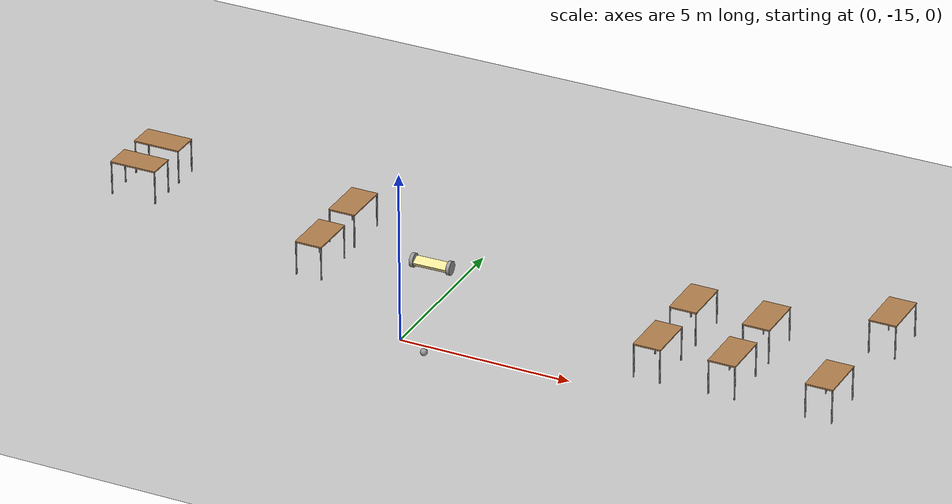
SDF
<sdf version="1.6">
 <world name="default">
  <model name="ground_plane">
   <static>1</static>
   <link name="link">
    <collision name="collision">
     <geometry><plane><normal>0 0 1</normal><size>100 100</size></plane></geometry>
     <surface><friction><ode><mu>100</mu><mu2>50</mu2></ode></friction></surface>
    </collision>
    <visual name="visual">
     <cast_shadows>0</cast_shadows>
     <geometry><plane><normal>0 0 1</normal><size>100 100</size></plane></geometry>
     <material>
      <script><uri>file://media/materials/scripts/gazebo.material</uri><name>Gazebo/Grey</name></script>
     </material>
    </visual>
   </link>
  </model>
  <model name="table_0">
   <static>0</static>
   <link name="link">
    <collision name="surface">
     <pose>0 0 1 0 -0 0</pose>
     <geometry><box><size>1.5 0.8 0.03</size></box></geometry>
     <surface><friction><ode><mu>0.6</mu><mu2>0.6</mu2></ode></friction></surface>
    </collision>
    <visual name="visual1">
     <pose>0 0 1 0 -0 0</pose>
     <geometry><box><size>1.4 0.8 0.04</size></box></geometry>
     <material>
      <script><uri>file://media/materials/scripts/gazebo.material</uri><name>Gazebo/Wood</name></script>
     </material>
    </visual>
    <collision name="front_left_leg">
     <pose>0.68 0.38 0.5 0 -0 0</pose>
     <geometry><cylinder><radius>0.02</radius><length>1</length></cylinder></geometry>
    </collision>
    <visual name="front_left_leg">
     <pose>0.68 0.38 0.5 0 -0 0</pose>
     <geometry><cylinder><radius>0.02</radius><length>1</length></cylinder></geometry>
     <material>
      <script><uri>file://media/materials/scripts/gazebo.material</uri><name>Gazebo/Grey</name></script>
     </material>
    </visual>
    <collision name="front_right_leg">
     <pose>0.68 -0.38 0.5 0 -0 0</pose>
     <geometry><cylinder><radius>0.02</radius><length>1</length></cylinder></geometry>
    </collision>
    <visual name="front_right_leg">
     <pose>0.68 -0.38 0.5 0 -0 0</pose>
     <geometry><cylinder><radius>0.02</radius><length>1</length></cylinder></geometry>
     <material>
      <script><uri>file://media/materials/scripts/gazebo.material</uri><name>Gazebo/Grey</name></script>
     </material>
    </visual>
    <collision name="back_right_leg">
     <pose>-0.68 -0.38 0.5 0 -0 0</pose>
     <geometry><cylinder><radius>0.02</radius><length>1</length></cylinder></geometry>
    </collision>
    <visual name="back_right_leg">
     <pose>-0.68 -0.38 0.5 0 -0 0</pose>
     <geometry><cylinder><radius>0.02</radius><length>1</length></cylinder></geometry>
     <material>
      <script><uri>file://media/materials/scripts/gazebo.material</uri><name>Gazebo/Grey</name></script>
     </material>
    </visual>
    <collision name="back_left_leg">
     <pose>-0.68 0.38 0.5 0 -0 0</pose>
     <geometry><cylinder><radius>0.02</radius><length>1</length></cylinder></geometry>
    </collision>
    <visual name="back_left_leg">
     <pose>-0.68 0.38 0.5 0 -0 0</pose>
     <geometry><cylinder><radius>0.02</radius><length>1</length></cylinder></geometry>
     <material>
      <script><uri>file://media/materials/scripts/gazebo.material</uri><name>Gazebo/Grey</name></script>
     </material>
    </visual>
    <inertial>
     <inertia><ixx>1</ixx><ixy>0</ixy><ixz>0</ixz><iyy>1</iyy><iyz>0</iyz><izz>1</izz></inertia>
     <mass>1</mass>
    </inertial>
   </link>
   <pose>6.803 -13.3459 -7e-06 2e-06 2e-06 1.57</pose>
  </model>
  <model name="table_0_clone">
   <static>0</static>
   <link name="link">
    <collision name="surface">
     <pose>0 0 1 0 -0 0</pose>
     <geometry><box><size>1.5 0.8 0.03</size></box></geometry>
     <surface><friction><ode><mu>0.6</mu><mu2>0.6</mu2></ode></friction></surface>
    </collision>
    <visual name="visual1">
     <pose>0 0 1 0 -0 0</pose>
     <geometry><box><size>1.4 0.8 0.04</size></box></geometry>
     <material>
      <script><uri>file://media/materials/scripts/gazebo.material</uri><name>Gazebo/Wood</name></script>
     </material>
    </visual>
    <collision name="front_left_leg">
     <pose>0.68 0.38 0.5 0 -0 0</pose>
     <geometry><cylinder><radius>0.02</radius><length>1</length></cylinder></geometry>
    </collision>
    <visual name="front_left_leg">
     <pose>0.68 0.38 0.5 0 -0 0</pose>
     <geometry><cylinder><radius>0.02</radius><length>1</length></cylinder></geometry>
     <material>
      <script><uri>file://media/materials/scripts/gazebo.material</uri><name>Gazebo/Grey</name></script>
     </material>
    </visual>
    <collision name="front_right_leg">
     <pose>0.68 -0.38 0.5 0 -0 0</pose>
     <geometry><cylinder><radius>0.02</radius><length>1</length></cylinder></geometry>
    </collision>
    <visual name="front_right_leg">
     <pose>0.68 -0.38 0.5 0 -0 0</pose>
     <geometry><cylinder><radius>0.02</radius><length>1</length></cylinder></geometry>
     <material>
      <script><uri>file://media/materials/scripts/gazebo.material</uri><name>Gazebo/Grey</name></script>
     </material>
    </visual>
    <collision name="back_right_leg">
     <pose>-0.68 -0.38 0.5 0 -0 0</pose>
     <geometry><cylinder><radius>0.02</radius><length>1</length></cylinder></geometry>
    </collision>
    <visual name="back_right_leg">
     <pose>-0.68 -0.38 0.5 0 -0 0</pose>
     <geometry><cylinder><radius>0.02</radius><length>1</length></cylinder></geometry>
     <material>
      <script><uri>file://media/materials/scripts/gazebo.material</uri><name>Gazebo/Grey</name></script>
     </material>
    </visual>
    <collision name="back_left_leg">
     <pose>-0.68 0.38 0.5 0 -0 0</pose>
     <geometry><cylinder><radius>0.02</radius><length>1</length></cylinder></geometry>
    </collision>
    <visual name="back_left_leg">
     <pose>-0.68 0.38 0.5 0 -0 0</pose>
     <geometry><cylinder><radius>0.02</radius><length>1</length></cylinder></geometry>
     <material>
      <script><uri>file://media/materials/scripts/gazebo.material</uri><name>Gazebo/Grey</name></script>
     </material>
    </visual>
    <inertial>
     <inertia><ixx>1</ixx><ixy>0</ixy><ixz>0</ixz><iyy>1</iyy><iyz>0</iyz><izz>1</izz></inertia>
     <mass>1</mass>
    </inertial>
   </link>
   <pose>8.92902 -13.2599 -7e-06 3e-06 2e-06 1.57</pose>
  </model>
  <model name="table_0_clone_0">
   <static>0</static>
   <link name="link">
    <collision name="surface">
     <pose>0 0 1 0 -0 0</pose>
     <geometry><box><size>1.5 0.8 0.03</size></box></geometry>
     <surface><friction><ode><mu>0.6</mu><mu2>0.6</mu2></ode></friction></surface>
    </collision>
    <visual name="visual1">
     <pose>0 0 1 0 -0 0</pose>
     <geometry><box><size>1.4 0.8 0.04</size></box></geometry>
     <material>
      <script><uri>file://media/materials/scripts/gazebo.material</uri><name>Gazebo/Wood</name></script>
     </material>
    </visual>
    <collision name="front_left_leg">
     <pose>0.68 0.38 0.5 0 -0 0</pose>
     <geometry><cylinder><radius>0.02</radius><length>1</length></cylinder></geometry>
    </collision>
    <visual name="front_left_leg">
     <pose>0.68 0.38 0.5 0 -0 0</pose>
     <geometry><cylinder><radius>0.02</radius><length>1</length></cylinder></geometry>
     <material>
      <script><uri>file://media/materials/scripts/gazebo.material</uri><name>Gazebo/Grey</name></script>
     </material>
    </visual>
    <collision name="front_right_leg">
     <pose>0.68 -0.38 0.5 0 -0 0</pose>
     <geometry><cylinder><radius>0.02</radius><length>1</length></cylinder></geometry>
    </collision>
    <visual name="front_right_leg">
     <pose>0.68 -0.38 0.5 0 -0 0</pose>
     <geometry><cylinder><radius>0.02</radius><length>1</length></cylinder></geometry>
     <material>
      <script><uri>file://media/materials/scripts/gazebo.material</uri><name>Gazebo/Grey</name></script>
     </material>
    </visual>
    <collision name="back_right_leg">
     <pose>-0.68 -0.38 0.5 0 -0 0</pose>
     <geometry><cylinder><radius>0.02</radius><length>1</length></cylinder></geometry>
    </collision>
    <visual name="back_right_leg">
     <pose>-0.68 -0.38 0.5 0 -0 0</pose>
     <geometry><cylinder><radius>0.02</radius><length>1</length></cylinder></geometry>
     <material>
      <script><uri>file://media/materials/scripts/gazebo.material</uri><name>Gazebo/Grey</name></script>
     </material>
    </visual>
    <collision name="back_left_leg">
     <pose>-0.68 0.38 0.5 0 -0 0</pose>
     <geometry><cylinder><radius>0.02</radius><length>1</length></cylinder></geometry>
    </collision>
    <visual name="back_left_leg">
     <pose>-0.68 0.38 0.5 0 -0 0</pose>
     <geometry><cylinder><radius>0.02</radius><length>1</length></cylinder></geometry>
     <material>
      <script><uri>file://media/materials/scripts/gazebo.material</uri><name>Gazebo/Grey</name></script>
     </material>
    </visual>
    <inertial>
     <inertia><ixx>1</ixx><ixy>0</ixy><ixz>0</ixz><iyy>1</iyy><iyz>0</iyz><izz>1</izz></inertia>
     <mass>1</mass>
    </inertial>
   </link>
   <pose>11.713 -13.2581 -7e-06 2e-06 2e-06 1.57</pose>
  </model>
  <model name="table_0_clone_0_clone">
   <static>0</static>
   <link name="link">
    <collision name="surface">
     <pose>0 0 1 0 -0 0</pose>
     <geometry><box><size>1.5 0.8 0.03</size></box></geometry>
     <surface><friction><ode><mu>0.6</mu><mu2>0.6</mu2></ode></friction></surface>
    </collision>
    <visual name="visual1">
     <pose>0 0 1 0 -0 0</pose>
     <geometry><box><size>1.4 0.8 0.04</size></box></geometry>
     <material>
      <script><uri>file://media/materials/scripts/gazebo.material</uri><name>Gazebo/Wood</name></script>
     </material>
    </visual>
    <collision name="front_left_leg">
     <pose>0.68 0.38 0.5 0 -0 0</pose>
     <geometry><cylinder><radius>0.02</radius><length>1</length></cylinder></geometry>
    </collision>
    <visual name="front_left_leg">
     <pose>0.68 0.38 0.5 0 -0 0</pose>
     <geometry><cylinder><radius>0.02</radius><length>1</length></cylinder></geometry>
     <material>
      <script><uri>file://media/materials/scripts/gazebo.material</uri><name>Gazebo/Grey</name></script>
     </material>
    </visual>
    <collision name="front_right_leg">
     <pose>0.68 -0.38 0.5 0 -0 0</pose>
     <geometry><cylinder><radius>0.02</radius><length>1</length></cylinder></geometry>
    </collision>
    <visual name="front_right_leg">
     <pose>0.68 -0.38 0.5 0 -0 0</pose>
     <geometry><cylinder><radius>0.02</radius><length>1</length></cylinder></geometry>
     <material>
      <script><uri>file://media/materials/scripts/gazebo.material</uri><name>Gazebo/Grey</name></script>
     </material>
    </visual>
    <collision name="back_right_leg">
     <pose>-0.68 -0.38 0.5 0 -0 0</pose>
     <geometry><cylinder><radius>0.02</radius><length>1</length></cylinder></geometry>
    </collision>
    <visual name="back_right_leg">
     <pose>-0.68 -0.38 0.5 0 -0 0</pose>
     <geometry><cylinder><radius>0.02</radius><length>1</length></cylinder></geometry>
     <material>
      <script><uri>file://media/materials/scripts/gazebo.material</uri><name>Gazebo/Grey</name></script>
     </material>
    </visual>
    <collision name="back_left_leg">
     <pose>-0.68 0.38 0.5 0 -0 0</pose>
     <geometry><cylinder><radius>0.02</radius><length>1</length></cylinder></geometry>
    </collision>
    <visual name="back_left_leg">
     <pose>-0.68 0.38 0.5 0 -0 0</pose>
     <geometry><cylinder><radius>0.02</radius><length>1</length></cylinder></geometry>
     <material>
      <script><uri>file://media/materials/scripts/gazebo.material</uri><name>Gazebo/Grey</name></script>
     </material>
    </visual>
    <inertial>
     <inertia><ixx>1</ixx><ixy>0</ixy><ixz>0</ixz><iyy>1</iyy><iyz>0</iyz><izz>1</izz></inertia>
     <mass>1</mass>
    </inertial>
   </link>
   <pose>11.8787 -9.43946 -1e-06 0 -1e-06 1.57164</pose>
  </model>
  <model name="table_0_clone_0_clone_0">
   <static>0</static>
   <link name="link">
    <collision name="surface">
     <pose>0 0 1 0 -0 0</pose>
     <geometry><box><size>1.5 0.8 0.03</size></box></geometry>
     <surface><friction><ode><mu>0.6</mu><mu2>0.6</mu2></ode></friction></surface>
    </collision>
    <visual name="visual1">
     <pose>0 0 1 0 -0 0</pose>
     <geometry><box><size>1.4 0.8 0.04</size></box></geometry>
     <material>
      <script><uri>file://media/materials/scripts/gazebo.material</uri><name>Gazebo/Wood</name></script>
     </material>
    </visual>
    <collision name="front_left_leg">
     <pose>0.68 0.38 0.5 0 -0 0</pose>
     <geometry><cylinder><radius>0.02</radius><length>1</length></cylinder></geometry>
    </collision>
    <visual name="front_left_leg">
     <pose>0.68 0.38 0.5 0 -0 0</pose>
     <geometry><cylinder><radius>0.02</radius><length>1</length></cylinder></geometry>
     <material>
      <script><uri>file://media/materials/scripts/gazebo.material</uri><name>Gazebo/Grey</name></script>
     </material>
    </visual>
    <collision name="front_right_leg">
     <pose>0.68 -0.38 0.5 0 -0 0</pose>
     <geometry><cylinder><radius>0.02</radius><length>1</length></cylinder></geometry>
    </collision>
    <visual name="front_right_leg">
     <pose>0.68 -0.38 0.5 0 -0 0</pose>
     <geometry><cylinder><radius>0.02</radius><length>1</length></cylinder></geometry>
     <material>
      <script><uri>file://media/materials/scripts/gazebo.material</uri><name>Gazebo/Grey</name></script>
     </material>
    </visual>
    <collision name="back_right_leg">
     <pose>-0.68 -0.38 0.5 0 -0 0</pose>
     <geometry><cylinder><radius>0.02</radius><length>1</length></cylinder></geometry>
    </collision>
    <visual name="back_right_leg">
     <pose>-0.68 -0.38 0.5 0 -0 0</pose>
     <geometry><cylinder><radius>0.02</radius><length>1</length></cylinder></geometry>
     <material>
      <script><uri>file://media/materials/scripts/gazebo.material</uri><name>Gazebo/Grey</name></script>
     </material>
    </visual>
    <collision name="back_left_leg">
     <pose>-0.68 0.38 0.5 0 -0 0</pose>
     <geometry><cylinder><radius>0.02</radius><length>1</length></cylinder></geometry>
    </collision>
    <visual name="back_left_leg">
     <pose>-0.68 0.38 0.5 0 -0 0</pose>
     <geometry><cylinder><radius>0.02</radius><length>1</length></cylinder></geometry>
     <material>
      <script><uri>file://media/materials/scripts/gazebo.material</uri><name>Gazebo/Grey</name></script>
     </material>
    </visual>
    <inertial>
     <inertia><ixx>1</ixx><ixy>0</ixy><ixz>0</ixz><iyy>1</iyy><iyz>0</iyz><izz>1</izz></inertia>
     <mass>1</mass>
    </inertial>
   </link>
   <pose>8.95502 -11.1223 -7e-06 3e-06 2e-06 1.57</pose>
  </model>
  <model name="table_0_clone_0_clone_0_clone">
   <static>0</static>
   <link name="link">
    <collision name="surface">
     <pose>0 0 1 0 -0 0</pose>
     <geometry><box><size>1.5 0.8 0.03</size></box></geometry>
     <surface><friction><ode><mu>0.6</mu><mu2>0.6</mu2></ode></friction></surface>
    </collision>
    <visual name="visual1">
     <pose>0 0 1 0 -0 0</pose>
     <geometry><box><size>1.4 0.8 0.04</size></box></geometry>
     <material>
      <script><uri>file://media/materials/scripts/gazebo.material</uri><name>Gazebo/Wood</name></script>
     </material>
    </visual>
    <collision name="front_left_leg">
     <pose>0.68 0.38 0.5 0 -0 0</pose>
     <geometry><cylinder><radius>0.02</radius><length>1</length></cylinder></geometry>
    </collision>
    <visual name="front_left_leg">
     <pose>0.68 0.38 0.5 0 -0 0</pose>
     <geometry><cylinder><radius>0.02</radius><length>1</length></cylinder></geometry>
     <material>
      <script><uri>file://media/materials/scripts/gazebo.material</uri><name>Gazebo/Grey</name></script>
     </material>
    </visual>
    <collision name="front_right_leg">
     <pose>0.68 -0.38 0.5 0 -0 0</pose>
     <geometry><cylinder><radius>0.02</radius><length>1</length></cylinder></geometry>
    </collision>
    <visual name="front_right_leg">
     <pose>0.68 -0.38 0.5 0 -0 0</pose>
     <geometry><cylinder><radius>0.02</radius><length>1</length></cylinder></geometry>
     <material>
      <script><uri>file://media/materials/scripts/gazebo.material</uri><name>Gazebo/Grey</name></script>
     </material>
    </visual>
    <collision name="back_right_leg">
     <pose>-0.68 -0.38 0.5 0 -0 0</pose>
     <geometry><cylinder><radius>0.02</radius><length>1</length></cylinder></geometry>
    </collision>
    <visual name="back_right_leg">
     <pose>-0.68 -0.38 0.5 0 -0 0</pose>
     <geometry><cylinder><radius>0.02</radius><length>1</length></cylinder></geometry>
     <material>
      <script><uri>file://media/materials/scripts/gazebo.material</uri><name>Gazebo/Grey</name></script>
     </material>
    </visual>
    <collision name="back_left_leg">
     <pose>-0.68 0.38 0.5 0 -0 0</pose>
     <geometry><cylinder><radius>0.02</radius><length>1</length></cylinder></geometry>
    </collision>
    <visual name="back_left_leg">
     <pose>-0.68 0.38 0.5 0 -0 0</pose>
     <geometry><cylinder><radius>0.02</radius><length>1</length></cylinder></geometry>
     <material>
      <script><uri>file://media/materials/scripts/gazebo.material</uri><name>Gazebo/Grey</name></script>
     </material>
    </visual>
    <inertial>
     <inertia><ixx>1</ixx><ixy>0</ixy><ixz>0</ixz><iyy>1</iyy><iyz>0</iyz><izz>1</izz></inertia>
     <mass>1</mass>
    </inertial>
   </link>
   <pose>6.82658 -11.1283 -7e-06 2e-06 2e-06 1.57</pose>
  </model>
  <model name="table_3">
   <static>0</static>
   <link name="link">
    <collision name="surface">
     <pose>0 0 1 0 -0 0</pose>
     <geometry><box><size>1.5 0.8 0.03</size></box></geometry>
     <surface><friction><ode><mu>0.6</mu><mu2>0.6</mu2></ode></friction></surface>
    </collision>
    <visual name="visual1">
     <pose>0 0 1 0 -0 0</pose>
     <geometry><box><size>1.4 0.8 0.04</size></box></geometry>
     <material>
      <script><uri>file://media/materials/scripts/gazebo.material</uri><name>Gazebo/Wood</name></script>
     </material>
    </visual>
    <collision name="front_left_leg">
     <pose>0.68 0.38 0.5 0 -0 0</pose>
     <geometry><cylinder><radius>0.02</radius><length>1</length></cylinder></geometry>
    </collision>
    <visual name="front_left_leg">
     <pose>0.68 0.38 0.5 0 -0 0</pose>
     <geometry><cylinder><radius>0.02</radius><length>1</length></cylinder></geometry>
     <material>
      <script><uri>file://media/materials/scripts/gazebo.material</uri><name>Gazebo/Grey</name></script>
     </material>
    </visual>
    <collision name="front_right_leg">
     <pose>0.68 -0.38 0.5 0 -0 0</pose>
     <geometry><cylinder><radius>0.02</radius><length>1</length></cylinder></geometry>
    </collision>
    <visual name="front_right_leg">
     <pose>0.68 -0.38 0.5 0 -0 0</pose>
     <geometry><cylinder><radius>0.02</radius><length>1</length></cylinder></geometry>
     <material>
      <script><uri>file://media/materials/scripts/gazebo.material</uri><name>Gazebo/Grey</name></script>
     </material>
    </visual>
    <collision name="back_right_leg">
     <pose>-0.68 -0.38 0.5 0 -0 0</pose>
     <geometry><cylinder><radius>0.02</radius><length>1</length></cylinder></geometry>
    </collision>
    <visual name="back_right_leg">
     <pose>-0.68 -0.38 0.5 0 -0 0</pose>
     <geometry><cylinder><radius>0.02</radius><length>1</length></cylinder></geometry>
     <material>
      <script><uri>file://media/materials/scripts/gazebo.material</uri><name>Gazebo/Grey</name></script>
     </material>
    </visual>
    <collision name="back_left_leg">
     <pose>-0.68 0.38 0.5 0 -0 0</pose>
     <geometry><cylinder><radius>0.02</radius><length>1</length></cylinder></geometry>
    </collision>
    <visual name="back_left_leg">
     <pose>-0.68 0.38 0.5 0 -0 0</pose>
     <geometry><cylinder><radius>0.02</radius><length>1</length></cylinder></geometry>
     <material>
      <script><uri>file://media/materials/scripts/gazebo.material</uri><name>Gazebo/Grey</name></script>
     </material>
    </visual>
    <inertial>
     <inertia><ixx>1</ixx><ixy>0</ixy><ixz>0</ixz><iyy>1</iyy><iyz>0</iyz><izz>1</izz></inertia>
     <mass>1</mass>
    </inertial>
   </link>
   <pose>-10.2158 -9.49094 -1e-06 0 1e-06 0</pose>
  </model>
  <model name="table_3_clone">
   <static>0</static>
   <link name="link">
    <collision name="surface">
     <pose>0 0 1 0 -0 0</pose>
     <geometry><box><size>1.5 0.8 0.03</size></box></geometry>
     <surface><friction><ode><mu>0.6</mu><mu2>0.6</mu2></ode></friction></surface>
    </collision>
    <visual name="visual1">
     <pose>0 0 1 0 -0 0</pose>
     <geometry><box><size>1.4 0.8 0.04</size></box></geometry>
     <material>
      <script><uri>file://media/materials/scripts/gazebo.material</uri><name>Gazebo/Wood</name></script>
     </material>
    </visual>
    <collision name="front_left_leg">
     <pose>0.68 0.38 0.5 0 -0 0</pose>
     <geometry><cylinder><radius>0.02</radius><length>1</length></cylinder></geometry>
    </collision>
    <visual name="front_left_leg">
     <pose>0.68 0.38 0.5 0 -0 0</pose>
     <geometry><cylinder><radius>0.02</radius><length>1</length></cylinder></geometry>
     <material>
      <script><uri>file://media/materials/scripts/gazebo.material</uri><name>Gazebo/Grey</name></script>
     </material>
    </visual>
    <collision name="front_right_leg">
     <pose>0.68 -0.38 0.5 0 -0 0</pose>
     <geometry><cylinder><radius>0.02</radius><length>1</length></cylinder></geometry>
    </collision>
    <visual name="front_right_leg">
     <pose>0.68 -0.38 0.5 0 -0 0</pose>
     <geometry><cylinder><radius>0.02</radius><length>1</length></cylinder></geometry>
     <material>
      <script><uri>file://media/materials/scripts/gazebo.material</uri><name>Gazebo/Grey</name></script>
     </material>
    </visual>
    <collision name="back_right_leg">
     <pose>-0.68 -0.38 0.5 0 -0 0</pose>
     <geometry><cylinder><radius>0.02</radius><length>1</length></cylinder></geometry>
    </collision>
    <visual name="back_right_leg">
     <pose>-0.68 -0.38 0.5 0 -0 0</pose>
     <geometry><cylinder><radius>0.02</radius><length>1</length></cylinder></geometry>
     <material>
      <script><uri>file://media/materials/scripts/gazebo.material</uri><name>Gazebo/Grey</name></script>
     </material>
    </visual>
    <collision name="back_left_leg">
     <pose>-0.68 0.38 0.5 0 -0 0</pose>
     <geometry><cylinder><radius>0.02</radius><length>1</length></cylinder></geometry>
    </collision>
    <visual name="back_left_leg">
     <pose>-0.68 0.38 0.5 0 -0 0</pose>
     <geometry><cylinder><radius>0.02</radius><length>1</length></cylinder></geometry>
     <material>
      <script><uri>file://media/materials/scripts/gazebo.material</uri><name>Gazebo/Grey</name></script>
     </material>
    </visual>
    <inertial>
     <inertia><ixx>1</ixx><ixy>0</ixy><ixz>0</ixz><iyy>1</iyy><iyz>0</iyz><izz>1</izz></inertia>
     <mass>1</mass>
    </inertial>
   </link>
   <pose>-10.218 -10.8466 -9e-06 0 -1e-06 0</pose>
  </model>
  <model name="table_3_clone_clone">
   <static>0</static>
   <link name="link">
    <collision name="surface">
     <pose>0 0 1 0 -0 0</pose>
     <geometry><box><size>1.5 0.8 0.03</size></box></geometry>
     <surface><friction><ode><mu>0.6</mu><mu2>0.6</mu2></ode></friction></surface>
    </collision>
    <visual name="visual1">
     <pose>0 0 1 0 -0 0</pose>
     <geometry><box><size>1.4 0.8 0.04</size></box></geometry>
     <material>
      <script><uri>file://media/materials/scripts/gazebo.material</uri><name>Gazebo/Wood</name></script>
     </material>
    </visual>
    <collision name="front_left_leg">
     <pose>0.68 0.38 0.5 0 -0 0</pose>
     <geometry><cylinder><radius>0.02</radius><length>1</length></cylinder></geometry>
    </collision>
    <visual name="front_left_leg">
     <pose>0.68 0.38 0.5 0 -0 0</pose>
     <geometry><cylinder><radius>0.02</radius><length>1</length></cylinder></geometry>
     <material>
      <script><uri>file://media/materials/scripts/gazebo.material</uri><name>Gazebo/Grey</name></script>
     </material>
    </visual>
    <collision name="front_right_leg">
     <pose>0.68 -0.38 0.5 0 -0 0</pose>
     <geometry><cylinder><radius>0.02</radius><length>1</length></cylinder></geometry>
    </collision>
    <visual name="front_right_leg">
     <pose>0.68 -0.38 0.5 0 -0 0</pose>
     <geometry><cylinder><radius>0.02</radius><length>1</length></cylinder></geometry>
     <material>
      <script><uri>file://media/materials/scripts/gazebo.material</uri><name>Gazebo/Grey</name></script>
     </material>
    </visual>
    <collision name="back_right_leg">
     <pose>-0.68 -0.38 0.5 0 -0 0</pose>
     <geometry><cylinder><radius>0.02</radius><length>1</length></cylinder></geometry>
    </collision>
    <visual name="back_right_leg">
     <pose>-0.68 -0.38 0.5 0 -0 0</pose>
     <geometry><cylinder><radius>0.02</radius><length>1</length></cylinder></geometry>
     <material>
      <script><uri>file://media/materials/scripts/gazebo.material</uri><name>Gazebo/Grey</name></script>
     </material>
    </visual>
    <collision name="back_left_leg">
     <pose>-0.68 0.38 0.5 0 -0 0</pose>
     <geometry><cylinder><radius>0.02</radius><length>1</length></cylinder></geometry>
    </collision>
    <visual name="back_left_leg">
     <pose>-0.68 0.38 0.5 0 -0 0</pose>
     <geometry><cylinder><radius>0.02</radius><length>1</length></cylinder></geometry>
     <material>
      <script><uri>file://media/materials/scripts/gazebo.material</uri><name>Gazebo/Grey</name></script>
     </material>
    </visual>
    <inertial>
     <inertia><ixx>1</ixx><ixy>0</ixy><ixz>0</ixz><iyy>1</iyy><iyz>0</iyz><izz>1</izz></inertia>
     <mass>1</mass>
    </inertial>
   </link>
   <pose>-3.81621 -10.3254 -7e-06 3e-06 2e-06 1.57001</pose>
  </model>
  <model name="table_3_clone_clone_clone">
   <static>0</static>
   <link name="link">
    <collision name="surface">
     <pose>0 0 1 0 -0 0</pose>
     <geometry><box><size>1.5 0.8 0.03</size></box></geometry>
     <surface><friction><ode><mu>0.6</mu><mu2>0.6</mu2></ode></friction></surface>
    </collision>
    <visual name="visual1">
     <pose>0 0 1 0 -0 0</pose>
     <geometry><box><size>1.4 0.8 0.04</size></box></geometry>
     <material>
      <script><uri>file://media/materials/scripts/gazebo.material</uri><name>Gazebo/Wood</name></script>
     </material>
    </visual>
    <collision name="front_left_leg">
     <pose>0.68 0.38 0.5 0 -0 0</pose>
     <geometry><cylinder><radius>0.02</radius><length>1</length></cylinder></geometry>
    </collision>
    <visual name="front_left_leg">
     <pose>0.68 0.38 0.5 0 -0 0</pose>
     <geometry><cylinder><radius>0.02</radius><length>1</length></cylinder></geometry>
     <material>
      <script><uri>file://media/materials/scripts/gazebo.material</uri><name>Gazebo/Grey</name></script>
     </material>
    </visual>
    <collision name="front_right_leg">
     <pose>0.68 -0.38 0.5 0 -0 0</pose>
     <geometry><cylinder><radius>0.02</radius><length>1</length></cylinder></geometry>
    </collision>
    <visual name="front_right_leg">
     <pose>0.68 -0.38 0.5 0 -0 0</pose>
     <geometry><cylinder><radius>0.02</radius><length>1</length></cylinder></geometry>
     <material>
      <script><uri>file://media/materials/scripts/gazebo.material</uri><name>Gazebo/Grey</name></script>
     </material>
    </visual>
    <collision name="back_right_leg">
     <pose>-0.68 -0.38 0.5 0 -0 0</pose>
     <geometry><cylinder><radius>0.02</radius><length>1</length></cylinder></geometry>
    </collision>
    <visual name="back_right_leg">
     <pose>-0.68 -0.38 0.5 0 -0 0</pose>
     <geometry><cylinder><radius>0.02</radius><length>1</length></cylinder></geometry>
     <material>
      <script><uri>file://media/materials/scripts/gazebo.material</uri><name>Gazebo/Grey</name></script>
     </material>
    </visual>
    <collision name="back_left_leg">
     <pose>-0.68 0.38 0.5 0 -0 0</pose>
     <geometry><cylinder><radius>0.02</radius><length>1</length></cylinder></geometry>
    </collision>
    <visual name="back_left_leg">
     <pose>-0.68 0.38 0.5 0 -0 0</pose>
     <geometry><cylinder><radius>0.02</radius><length>1</length></cylinder></geometry>
     <material>
      <script><uri>file://media/materials/scripts/gazebo.material</uri><name>Gazebo/Grey</name></script>
     </material>
    </visual>
    <inertial>
     <inertia><ixx>1</ixx><ixy>0</ixy><ixz>0</ixz><iyy>1</iyy><iyz>0</iyz><izz>1</izz></inertia>
     <mass>1</mass>
    </inertial>
   </link>
   <pose>-3.79172 -12.3358 -1e-06 -0 -1e-06 1.57001</pose>
  </model>
  <model name="robot_0">
   <link name="link_0">
    <inertial>
     <mass>1.59387</mass>
     <inertia>
      <ixx>0.470249</ixx>
      <ixy>0</ixy>
      <ixz>0</ixz>
      <iyy>0.265646</iyy>
      <iyz>0</iyz>
      <izz>0.470249</izz>
     </inertia>
    </inertial>
    <visual name="visual">
     <geometry><box><size>0.3 1 0.1</size></box></geometry>
     <material>
      <lighting>1</lighting>
      <script><uri>file://media/materials/scripts/gazebo.material</uri><name>Gazebo/Grey</name></script>
      <ambient>1 0.9 0.6 1</ambient>
      <diffuse>1 0.9 0.6 1</diffuse>
      <specular>0.01 0.01 0.01 1</specular>
      <emissive>0 0 0 1</emissive>
      <shader type="vertex"><normal_map>__default__</normal_map></shader>
     </material>
    </visual>
    <collision name="collision">
     <geometry><box><size>0.3 1 0.1</size></box></geometry>
     <surface>
      <friction>
       <ode><mu>1</mu><mu2>1</mu2><fdir1>0 0 0</fdir1><slip1>0</slip1><slip2>0</slip2></ode>
       <torsional>
        <coefficient>1</coefficient>
        <patch_radius>0</patch_radius>
        <surface_radius>0</surface_radius>
        <use_patch_radius>1</use_patch_radius>
        <ode><slip>0</slip></ode>
       </torsional>
      </friction>
      <bounce><restitution_coefficient>0</restitution_coefficient><threshold>1e+06</threshold></bounce>
      <contact>
       <collide_without_contact>0</collide_without_contact>
       <collide_without_contact_bitmask>1</collide_without_contact_bitmask>
       <collide_bitmask>1</collide_bitmask>
       <ode>
        <soft_cfm>0</soft_cfm>
        <soft_erp>0.2</soft_erp>
        <kp>1e+13</kp>
        <kd>1</kd>
        <max_vel>0.01</max_vel>
        <min_depth>0</min_depth>
       </ode>
       <bullet>
        <split_impulse>1</split_impulse>
        <split_impulse_penetration_threshold>-0.01</split_impulse_penetration_threshold>
        <soft_cfm>0</soft_cfm>
        <soft_erp>0.2</soft_erp>
        <kp>1e+13</kp>
        <kd>1</kd>
       </bullet>
      </contact>
     </surface>
    </collision>
   </link>
   <link name="link_1">
    <pose>0 -0.550019 -0 1.5707 -0 0</pose>
    <inertial>
     <mass>1</mass>
     <inertia><ixx>0.145833</ixx><ixy>0</ixy><ixz>0</ixz><iyy>0.145833</iyy><iyz>0</iyz><izz>0.125</izz></inertia>
    </inertial>
    <visual name="visual">
     <geometry><cylinder><radius>0.2</radius><length>0.1</length></cylinder></geometry>
     <material>
      <lighting>1</lighting>
      <script><uri>file://media/materials/scripts/gazebo.material</uri><name>Gazebo/Grey</name></script>
      <ambient>0.5 0.5 0.5 1</ambient>
      <diffuse>0.5 0.5 0.5 1</diffuse>
      <specular>0.01 0.01 0.01 1</specular>
      <emissive>0 0 0 1</emissive>
      <shader type="vertex"><normal_map>__default__</normal_map></shader>
     </material>
    </visual>
    <collision name="collision">
     <geometry><cylinder><radius>0.2</radius><length>0.1</length></cylinder></geometry>
     <surface>
      <friction>
       <ode><mu>1</mu><mu2>1</mu2><fdir1>0 0 0</fdir1><slip1>0</slip1><slip2>0</slip2></ode>
       <torsional>
        <coefficient>1</coefficient>
        <patch_radius>0</patch_radius>
        <surface_radius>0</surface_radius>
        <use_patch_radius>1</use_patch_radius>
        <ode><slip>0</slip></ode>
       </torsional>
      </friction>
      <bounce><restitution_coefficient>0</restitution_coefficient><threshold>1e+06</threshold></bounce>
      <contact>
       <collide_without_contact>0</collide_without_contact>
       <collide_without_contact_bitmask>1</collide_without_contact_bitmask>
       <collide_bitmask>1</collide_bitmask>
       <ode>
        <soft_cfm>0</soft_cfm>
        <soft_erp>0.2</soft_erp>
        <kp>1e+13</kp>
        <kd>1</kd>
        <max_vel>0.01</max_vel>
        <min_depth>0</min_depth>
       </ode>
       <bullet>
        <split_impulse>1</split_impulse>
        <split_impulse_penetration_threshold>-0.01</split_impulse_penetration_threshold>
        <soft_cfm>0</soft_cfm>
        <soft_erp>0.2</soft_erp>
        <kp>1e+13</kp>
        <kd>1</kd>
       </bullet>
      </contact>
     </surface>
    </collision>
   </link>
   <link name="link_1_clone">
    <pose>-0 0.550019 0 1.5707 -0 0</pose>
    <inertial>
     <mass>1</mass>
     <inertia><ixx>0.145833</ixx><ixy>0</ixy><ixz>0</ixz><iyy>0.145833</iyy><iyz>0</iyz><izz>0.125</izz></inertia>
    </inertial>
    <visual name="visual">
     <geometry><cylinder><radius>0.2</radius><length>0.1</length></cylinder></geometry>
     <material>
      <lighting>1</lighting>
      <script><uri>file://media/materials/scripts/gazebo.material</uri><name>Gazebo/Grey</name></script>
      <ambient>0.5 0.5 0.5 1</ambient>
      <diffuse>0.5 0.5 0.5 1</diffuse>
      <specular>0.01 0.01 0.01 1</specular>
      <emissive>0 0 0 1</emissive>
      <shader type="vertex"><normal_map>__default__</normal_map></shader>
     </material>
    </visual>
    <collision name="collision">
     <geometry><cylinder><radius>0.2</radius><length>0.1</length></cylinder></geometry>
     <surface>
      <friction>
       <ode><mu>1</mu><mu2>1</mu2><fdir1>0 0 0</fdir1><slip1>0</slip1><slip2>0</slip2></ode>
       <torsional>
        <coefficient>1</coefficient>
        <patch_radius>0</patch_radius>
        <surface_radius>0</surface_radius>
        <use_patch_radius>1</use_patch_radius>
        <ode><slip>0</slip></ode>
       </torsional>
      </friction>
      <bounce><restitution_coefficient>0</restitution_coefficient><threshold>1e+06</threshold></bounce>
      <contact>
       <collide_without_contact>0</collide_without_contact>
       <collide_without_contact_bitmask>1</collide_without_contact_bitmask>
       <collide_bitmask>1</collide_bitmask>
       <ode>
        <soft_cfm>0</soft_cfm>
        <soft_erp>0.2</soft_erp>
        <kp>1e+13</kp>
        <kd>1</kd>
        <max_vel>0.01</max_vel>
        <min_depth>0</min_depth>
       </ode>
       <bullet>
        <split_impulse>1</split_impulse>
        <split_impulse_penetration_threshold>-0.01</split_impulse_penetration_threshold>
        <soft_cfm>0</soft_cfm>
        <soft_erp>0.2</soft_erp>
        <kp>1e+13</kp>
        <kd>1</kd>
       </bullet>
      </contact>
     </surface>
    </collision>
   </link>
   <joint name="link_0_JOINT_0" type="revolute">
    <parent>link_0</parent>
    <child>link_1</child>
    <axis>
     <xyz>0 0 1</xyz>
     <use_parent_model_frame>0</use_parent_model_frame>
     <limit>
      <lower>-1.79769e+308</lower>
      <upper>1.79769e+308</upper>
      <effort>-1</effort>
      <velocity>-1</velocity>
     </limit>
     <dynamics>
      <spring_reference>0</spring_reference>
      <spring_stiffness>0</spring_stiffness>
      <damping>0</damping>
      <friction>0</friction>
     </dynamics>
    </axis>
    <physics>
     <ode><limit><cfm>0</cfm><erp>0.2</erp></limit><suspension><cfm>0</cfm><erp>0.2</erp></suspension></ode>
    </physics>
   </joint>
   <joint name="link_0_JOINT_1" type="revolute">
    <parent>link_0</parent>
    <child>link_1_clone</child>
    <axis>
     <xyz>0 0 1</xyz>
     <use_parent_model_frame>0</use_parent_model_frame>
     <limit>
      <lower>-1.79769e+308</lower>
      <upper>1.79769e+308</upper>
      <effort>-1</effort>
      <velocity>-1</velocity>
     </limit>
     <dynamics>
      <spring_reference>0</spring_reference>
      <spring_stiffness>0</spring_stiffness>
      <damping>0</damping>
      <friction>0</friction>
     </dynamics>
    </axis>
    <physics>
     <ode><limit><cfm>0</cfm><erp>0.2</erp></limit><suspension><cfm>0</cfm><erp>0.2</erp></suspension></ode>
    </physics>
   </joint>
   <static>0</static>
   <pose>-0.953936 -11.2224 0.200004 0 -0.40397 1.59302</pose>
  </model>
  <model name="my_ball">
   <link name="link_0">
    <inertial>
     <mass>1</mass>
     <inertia><ixx>0.1</ixx><ixy>0</ixy><ixz>0</ixz><iyy>0.1</iyy><iyz>0</iyz><izz>0.1</izz></inertia>
    </inertial>
    <visual name="visual">
     <geometry><sphere><radius>0.1</radius></sphere></geometry>
     <material>
      <lighting>1</lighting>
      <script><uri>file://media/materials/scripts/gazebo.material</uri><name>Gazebo/Grey</name></script>
      <ambient>1 1 1 1</ambient>
      <diffuse>1 1 1 1</diffuse>
      <specular>1 1 1 1</specular>
      <emissive>1 1 1 1</emissive>
      <shader type="vertex"><normal_map>__default__</normal_map></shader>
     </material>
    </visual>
    <collision name="collision">
     <geometry><sphere><radius>0.1</radius></sphere></geometry>
     <surface>
      <friction>
       <ode><mu>1</mu><mu2>1</mu2><fdir1>0 0 0</fdir1><slip1>0</slip1><slip2>0</slip2></ode>
       <torsional>
        <coefficient>1</coefficient>
        <patch_radius>0</patch_radius>
        <surface_radius>0</surface_radius>
        <use_patch_radius>1</use_patch_radius>
        <ode><slip>0</slip></ode>
       </torsional>
      </friction>
      <bounce><restitution_coefficient>0</restitution_coefficient><threshold>1e+06</threshold></bounce>
      <contact>
       <collide_without_contact>0</collide_without_contact>
       <collide_without_contact_bitmask>1</collide_without_contact_bitmask>
       <collide_bitmask>1</collide_bitmask>
       <ode>
        <soft_cfm>0</soft_cfm>
        <soft_erp>0.2</soft_erp>
        <kp>1e+13</kp>
        <kd>1</kd>
        <max_vel>0.01</max_vel>
        <min_depth>0</min_depth>
       </ode>
       <bullet>
        <split_impulse>1</split_impulse>
        <split_impulse_penetration_threshold>-0.01</split_impulse_penetration_threshold>
        <soft_cfm>0</soft_cfm>
        <soft_erp>0.2</soft_erp>
        <kp>1e+13</kp>
        <kd>1</kd>
       </bullet>
      </contact>
     </surface>
    </collision>
   </link>
   <static>0</static>
   <pose>0.929809 -15.446 0.1 0 -0 0</pose>
  </model>
 </world>
</sdf>
